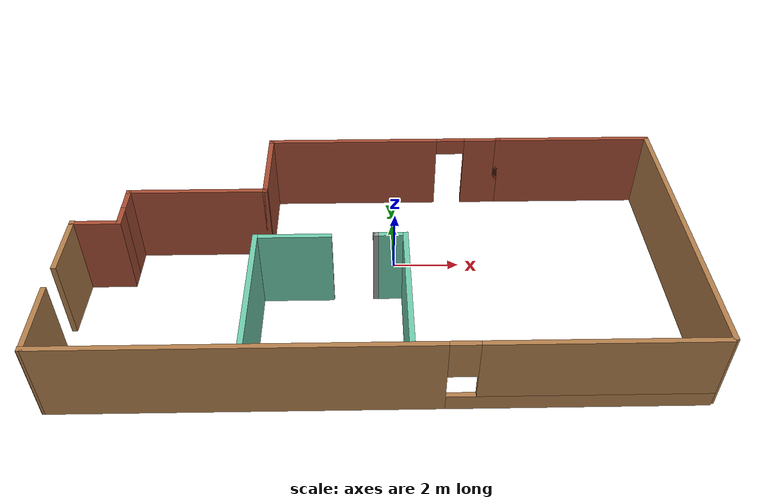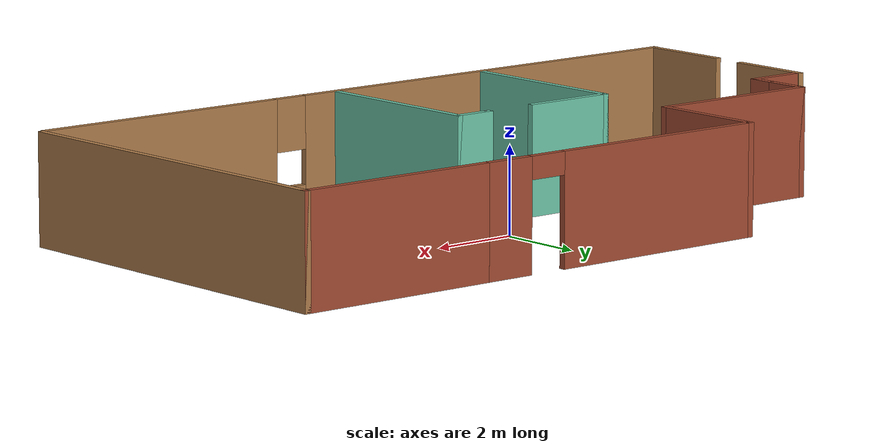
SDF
<?xml version='1.0'?>
<sdf version='1.6'>
  <model name='smallspace.world'>
    <pose frame=''>-0.555355 -1.14533 0 0 -0 0</pose>
    <link name='Wall_0'>
      <collision name='Wall_0_Collision'>
        <geometry>
          <box>
            <size>2.25 0.15 2.5</size>
          </box>
        </geometry>
        <pose frame=''>0 0 1.25 0 -0 0</pose>
      </collision>
      <visual name='Wall_0_Visual'>
        <pose frame=''>0 0 1.25 0 -0 0</pose>
        <geometry>
          <box>
            <size>2.25 0.15 2.5</size>
          </box>
        </geometry>
        <material>
          <script>
            <uri>file://media/materials/scripts/gazebo.material</uri>
            <name>Gazebo/Wood</name>
          </script>
          <ambient>1 1 1 1</ambient>
        </material>
        <meta>
          <layer>0</layer>
        </meta>
      </visual>
      <pose frame=''>-8.84464 -3.40467 0 0 -0 -1.56127</pose>
    </link>
    <link name='Wall_1'>
      <pose frame=''>-0.044645 -4.45467 0 0 -0 0</pose>
      <visual name='Wall_1_Visual_0'>
        <pose frame=''>-3.55125 0 1.25 0 -0 0</pose>
        <geometry>
          <box>
            <size>10.6475 0.15 2.5</size>
          </box>
        </geometry>
        <material>
          <script>
            <uri>file://media/materials/scripts/gazebo.material</uri>
            <name>Gazebo/Wood</name>
          </script>
          <ambient>1 1 1 1</ambient>
        </material>
        <meta>
          <layer>0</layer>
        </meta>
      </visual>
      <collision name='Wall_1_Collision_0'>
        <geometry>
          <box>
            <size>10.6475 0.15 2.5</size>
          </box>
        </geometry>
        <pose frame=''>-3.55125 0 1.25 0 -0 0</pose>
      </collision>
      <visual name='Wall_1_Visual_1'>
        <pose frame=''>5.32375 0 0.25 0 -0 0</pose>
        <geometry>
          <box>
            <size>7.10251 0.15 0.5</size>
          </box>
        </geometry>
        <material>
          <script>
            <uri>file://media/materials/scripts/gazebo.material</uri>
            <name>Gazebo/Wood</name>
          </script>
          <ambient>1 1 1 1</ambient>
        </material>
        <meta>
          <layer>0</layer>
        </meta>
      </visual>
      <collision name='Wall_1_Collision_1'>
        <geometry>
          <box>
            <size>7.10251 0.15 0.5</size>
          </box>
        </geometry>
        <pose frame=''>5.32375 0 0.25 0 -0 0</pose>
      </collision>
      <visual name='Wall_1_Visual_2'>
        <pose frame=''>5.72375 0 1.5 0 -0 0</pose>
        <geometry>
          <box>
            <size>6.30251 0.15 2</size>
          </box>
        </geometry>
        <material>
          <script>
            <uri>file://media/materials/scripts/gazebo.material</uri>
            <name>Gazebo/Wood</name>
          </script>
          <ambient>1 1 1 1</ambient>
        </material>
        <meta>
          <layer>0</layer>
        </meta>
      </visual>
      <collision name='Wall_1_Collision_2'>
        <geometry>
          <box>
            <size>6.30251 0.15 2</size>
          </box>
        </geometry>
        <pose frame=''>5.72375 0 1.5 0 -0 0</pose>
      </collision>
      <visual name='Wall_1_Visual_3'>
        <pose frame=''>2.17249 0 1.9 0 -0 0</pose>
        <geometry>
          <box>
            <size>0.8 0.15 1.2</size>
          </box>
        </geometry>
        <material>
          <script>
            <uri>file://media/materials/scripts/gazebo.material</uri>
            <name>Gazebo/Wood</name>
          </script>
          <ambient>1 1 1 1</ambient>
        </material>
        <meta>
          <layer>0</layer>
        </meta>
      </visual>
      <collision name='Wall_1_Collision_3'>
        <geometry>
          <box>
            <size>0.8 0.15 1.2</size>
          </box>
        </geometry>
        <pose frame=''>2.17249 0 1.9 0 -0 0</pose>
      </collision>
    </link>
    <link name='Wall_11'>
      <collision name='Wall_11_Collision'>
        <geometry>
          <box>
            <size>0.75 0.15 2.5</size>
          </box>
        </geometry>
        <pose frame=''>0 0 1.25 0 -0 0</pose>
      </collision>
      <visual name='Wall_11_Visual'>
        <pose frame=''>0 0 1.25 0 -0 0</pose>
        <geometry>
          <box>
            <size>0.75 0.15 2.5</size>
          </box>
        </geometry>
        <material>
          <script>
            <uri>file://media/materials/scripts/gazebo.material</uri>
            <name>Gazebo/Bricks</name>
          </script>
          <ambient>1 1 1 1</ambient>
        </material>
        <meta>
          <layer>0</layer>
        </meta>
      </visual>
      <pose frame=''>-7.44465 0.705332 0 0 -0 1.5708</pose>
    </link>
    <link name='Wall_12'>
      <collision name='Wall_12_Collision'>
        <geometry>
          <box>
            <size>1 0.15 2.5</size>
          </box>
        </geometry>
        <pose frame=''>0 0 1.25 0 -0 0</pose>
      </collision>
      <visual name='Wall_12_Visual'>
        <pose frame=''>0 0 1.25 0 -0 0</pose>
        <geometry>
          <box>
            <size>1 0.15 2.5</size>
          </box>
        </geometry>
        <material>
          <script>
            <uri>file://media/materials/scripts/gazebo.material</uri>
            <name>Gazebo/Bricks</name>
          </script>
          <ambient>1 1 1 1</ambient>
        </material>
        <meta>
          <layer>0</layer>
        </meta>
      </visual>
      <pose frame=''>-7.44465 1.43033 0 0 -0 1.5708</pose>
    </link>
    <link name='Wall_13'>
      <collision name='Wall_13_Collision'>
        <geometry>
          <box>
            <size>4.25 0.15 2.5</size>
          </box>
        </geometry>
        <pose frame=''>0 0 1.25 0 -0 0</pose>
      </collision>
      <visual name='Wall_13_Visual'>
        <pose frame=''>0 0 1.25 0 -0 0</pose>
        <geometry>
          <box>
            <size>4.25 0.15 2.5</size>
          </box>
        </geometry>
        <material>
          <script>
            <uri>file://media/materials/scripts/gazebo.material</uri>
            <name>Gazebo/Bricks</name>
          </script>
          <ambient>1 1 1 1</ambient>
        </material>
        <meta>
          <layer>0</layer>
        </meta>
      </visual>
      <pose frame=''>-5.39464 1.85533 0 0 -0 0</pose>
    </link>
    <link name='Wall_14'>
      <collision name='Wall_14_Collision'>
        <geometry>
          <box>
            <size>2.75 0.15 2.5</size>
          </box>
        </geometry>
        <pose frame=''>0 0 1.25 0 -0 0</pose>
      </collision>
      <visual name='Wall_14_Visual'>
        <pose frame=''>0 0 1.25 0 -0 0</pose>
        <geometry>
          <box>
            <size>2.75 0.15 2.5</size>
          </box>
        </geometry>
        <material>
          <script>
            <uri>file://media/materials/scripts/gazebo.material</uri>
            <name>Gazebo/Bricks</name>
          </script>
          <ambient>1 1 1 1</ambient>
        </material>
        <meta>
          <layer>0</layer>
        </meta>
      </visual>
      <pose frame=''>-3.34465 3.15533 0 0 -0 1.5708</pose>
    </link>
    <link name='Wall_15'>
      <pose frame=''>0.330355 4.45533 0 0 -0 0</pose>
      <visual name='Wall_15_Visual_0'>
        <pose frame=''>-1.03396 0 1.25 0 -0 0</pose>
        <geometry>
          <box>
            <size>5.43209 0.15 2.5</size>
          </box>
        </geometry>
        <material>
          <script>
            <uri>file://media/materials/scripts/gazebo.material</uri>
            <name>Gazebo/Bricks</name>
          </script>
          <ambient>0.996078 0.47451 0.0196078 1</ambient>
        </material>
        <meta>
          <layer>0</layer>
        </meta>
      </visual>
      <collision name='Wall_15_Collision_0'>
        <geometry>
          <box>
            <size>5.43209 0.15 2.5</size>
          </box>
        </geometry>
        <pose frame=''>-1.03396 0 1.25 0 -0 0</pose>
      </collision>
      <visual name='Wall_15_Visual_1'>
        <pose frame=''>3.16604 0 1.25 0 -0 0</pose>
        <geometry>
          <box>
            <size>1.16791 0.15 2.5</size>
          </box>
        </geometry>
        <material>
          <script>
            <uri>file://media/materials/scripts/gazebo.material</uri>
            <name>Gazebo/Bricks</name>
          </script>
          <ambient>0.996078 0.47451 0.0196078 1</ambient>
        </material>
        <meta>
          <layer>0</layer>
        </meta>
      </visual>
      <collision name='Wall_15_Collision_1'>
        <geometry>
          <box>
            <size>1.16791 0.15 2.5</size>
          </box>
        </geometry>
        <pose frame=''>3.16604 0 1.25 0 -0 0</pose>
      </collision>
      <visual name='Wall_15_Visual_2'>
        <pose frame=''>2.13209 0 2.25 0 -0 0</pose>
        <geometry>
          <box>
            <size>0.9 0.15 0.5</size>
          </box>
        </geometry>
        <material>
          <script>
            <uri>file://media/materials/scripts/gazebo.material</uri>
            <name>Gazebo/Bricks</name>
          </script>
          <ambient>0.996078 0.47451 0.0196078 1</ambient>
        </material>
        <meta>
          <layer>0</layer>
        </meta>
      </visual>
      <collision name='Wall_15_Collision_2'>
        <geometry>
          <box>
            <size>0.9 0.15 0.5</size>
          </box>
        </geometry>
        <pose frame=''>2.13209 0 2.25 0 -0 0</pose>
      </collision>
    </link>
    <link name='Wall_16'>
      <collision name='Wall_16_Collision'>
        <geometry>
          <box>
            <size>5 0.15 2.5</size>
          </box>
        </geometry>
        <pose frame=''>0 0 1.25 0 -0 0</pose>
      </collision>
      <visual name='Wall_16_Visual'>
        <pose frame=''>0 0 1.25 0 -0 0</pose>
        <geometry>
          <box>
            <size>5 0.15 2.5</size>
          </box>
        </geometry>
        <material>
          <script>
            <uri>file://media/materials/scripts/gazebo.material</uri>
            <name>Gazebo/Bricks</name>
          </script>
          <ambient>0.996078 0.47451 0.0196078 1</ambient>
        </material>
        <meta>
          <layer>0</layer>
        </meta>
      </visual>
      <pose frame=''>6.43035 4.45533 0 0 -0 0</pose>
    </link>
    <link name='Wall_17'>
      <collision name='Wall_17_Collision'>
        <geometry>
          <box>
            <size>9 0.15 2.5</size>
          </box>
        </geometry>
        <pose frame=''>0 0 1.25 0 -0 0</pose>
      </collision>
      <visual name='Wall_17_Visual'>
        <pose frame=''>0 0 1.25 0 -0 0</pose>
        <geometry>
          <box>
            <size>9 0.15 2.5</size>
          </box>
        </geometry>
        <material>
          <script>
            <uri>file://media/materials/scripts/gazebo.material</uri>
            <name>Gazebo/Wood</name>
          </script>
          <ambient>1 1 1 1</ambient>
        </material>
        <meta>
          <layer>0</layer>
        </meta>
      </visual>
      <pose frame=''>8.85535 0.030331 0 0 -0 -1.5708</pose>
    </link>
    <link name='Wall_19'>
      <collision name='Wall_19_Collision'>
        <geometry>
          <box>
            <size>4.25 0.15 2.5</size>
          </box>
        </geometry>
        <pose frame=''>0 0 1.25 0 -0 0</pose>
      </collision>
      <visual name='Wall_19_Visual'>
        <pose frame=''>0 0 1.25 0 -0 0</pose>
        <geometry>
          <box>
            <size>4.25 0.15 2.5</size>
          </box>
        </geometry>
        <material>
          <script>
            <uri>file://media/materials/scripts/gazebo.material</uri>
            <name>Gazebo/Grey</name>
          </script>
          <ambient>0.435294 0.796078 0.67451 1</ambient>
        </material>
        <meta>
          <layer>0</layer>
        </meta>
      </visual>
      <pose frame=''>-3.4598 -2.33693 0 0 -0 1.5708</pose>
    </link>
    <link name='Wall_20'>
      <collision name='Wall_20_Collision'>
        <geometry>
          <box>
            <size>2.25 0.15 2.5</size>
          </box>
        </geometry>
        <pose frame=''>0 0 1.25 0 -0 0</pose>
      </collision>
      <visual name='Wall_20_Visual'>
        <pose frame=''>0 0 1.25 0 -0 0</pose>
        <geometry>
          <box>
            <size>2.25 0.15 2.5</size>
          </box>
        </geometry>
        <material>
          <script>
            <uri>file://media/materials/scripts/gazebo.material</uri>
            <name>Gazebo/Grey</name>
          </script>
          <ambient>0.435294 0.796078 0.67451 1</ambient>
        </material>
        <meta>
          <layer>0</layer>
        </meta>
      </visual>
      <pose frame=''>-2.4098 -0.286933 0 0 -0 0</pose>
    </link>
    <link name='Wall_22'>
      <collision name='Wall_22_Collision'>
        <geometry>
          <box>
            <size>1 0.15 2.5</size>
          </box>
        </geometry>
        <pose frame=''>0 0 1.25 0 -0 0</pose>
      </collision>
      <visual name='Wall_22_Visual'>
        <pose frame=''>0 0 1.25 0 -0 0</pose>
        <geometry>
          <box>
            <size>1 0.15 2.5</size>
          </box>
        </geometry>
        <material>
          <script>
            <uri>file://media/materials/scripts/gazebo.material</uri>
            <name>Gazebo/Grey</name>
          </script>
          <ambient>0.435294 0.796078 0.67451 1</ambient>
        </material>
        <meta>
          <layer>0</layer>
        </meta>
      </visual>
      <pose frame=''>0.386204 -0.250933 0 0 -0 0</pose>
    </link>
    <link name='Wall_23'>
      <collision name='Wall_23_Collision'>
        <geometry>
          <box>
            <size>4.25 0.15 2.5</size>
          </box>
        </geometry>
        <pose frame=''>0 0 1.25 0 -0 0</pose>
      </collision>
      <visual name='Wall_23_Visual'>
        <pose frame=''>0 0 1.25 0 -0 0</pose>
        <geometry>
          <box>
            <size>4.25 0.15 2.5</size>
          </box>
        </geometry>
        <material>
          <script>
            <uri>file://media/materials/scripts/gazebo.material</uri>
            <name>Gazebo/Grey</name>
          </script>
          <ambient>0.435294 0.796078 0.67451 1</ambient>
        </material>
        <meta>
          <layer>0</layer>
        </meta>
      </visual>
      <pose frame=''>0.811204 -2.30093 0 0 -0 -1.5708</pose>
    </link>
    <link name='Wall_25'>
      <collision name='Wall_25_Collision'>
        <geometry>
          <box>
            <size>0.15 0.15 2.5</size>
          </box>
        </geometry>
        <pose frame=''>0 0 1.25 0 -0 0</pose>
      </collision>
      <visual name='Wall_25_Visual'>
        <pose frame=''>0 0 1.25 0 -0 0</pose>
        <geometry>
          <box>
            <size>0.15 0.15 2.5</size>
          </box>
        </geometry>
        <material>
          <script>
            <uri>file://media/materials/scripts/gazebo.material</uri>
            <name>Gazebo/Grey</name>
          </script>
          <ambient>1 1 1 1</ambient>
        </material>
        <meta>
          <layer>0</layer>
        </meta>
      </visual>
      <pose frame=''>-0.038796 -0.250933 0 0 -0 0</pose>
    </link>
    <link name='Wall_26'>
      <collision name='Wall_26_Collision'>
        <geometry>
          <box>
            <size>0.15 0.15 2.5</size>
          </box>
        </geometry>
        <pose frame=''>0 0 1.25 0 -0 0</pose>
      </collision>
      <visual name='Wall_26_Visual'>
        <pose frame=''>0 0 1.25 0 -0 0</pose>
        <geometry>
          <box>
            <size>0.15 0.15 2.5</size>
          </box>
        </geometry>
        <material>
          <script>
            <uri>file://media/materials/scripts/gazebo.material</uri>
            <name>Gazebo/Grey</name>
          </script>
          <ambient>1 1 1 1</ambient>
        </material>
        <meta>
          <layer>0</layer>
        </meta>
      </visual>
      <pose frame=''>-0.038796 -0.250933 0 0 -0 0</pose>
    </link>
    <link name='Wall_7'>
      <collision name='Wall_7_Collision'>
        <geometry>
          <box>
            <size>1.5 0.15 2.5</size>
          </box>
        </geometry>
        <pose frame=''>0 0 1.25 0 -0 0</pose>
      </collision>
      <visual name='Wall_7_Visual'>
        <pose frame=''>0 0 1.25 0 -0 0</pose>
        <geometry>
          <box>
            <size>1.5 0.15 2.5</size>
          </box>
        </geometry>
        <material>
          <script>
            <uri>file://media/materials/scripts/gazebo.material</uri>
            <name>Gazebo/Bricks</name>
          </script>
          <ambient>1 1 1 1</ambient>
        </material>
        <meta>
          <layer>0</layer>
        </meta>
      </visual>
      <pose frame=''>-8.11965 0.405331 0 0 -0 3.14159</pose>
    </link>
    <link name='Wall_8'>
      <collision name='Wall_8_Collision'>
        <geometry>
          <box>
            <size>2.03003 0.15 2.5</size>
          </box>
        </geometry>
        <pose frame=''>0 0 1.25 0 -0 0</pose>
      </collision>
      <visual name='Wall_8_Visual'>
        <pose frame=''>0 0 1.25 0 -0 0</pose>
        <geometry>
          <box>
            <size>2.03003 0.15 2.5</size>
          </box>
        </geometry>
        <material>
          <script>
            <uri>file://media/materials/scripts/gazebo.material</uri>
            <name>Gazebo/Wood</name>
          </script>
          <ambient>1 1 1 1</ambient>
        </material>
        <meta>
          <layer>0</layer>
        </meta>
      </visual>
      <pose frame=''>-8.79964 -0.514668 0 0 -0 -1.57611</pose>
    </link>
    <static>1</static>
  </model>
</sdf>
